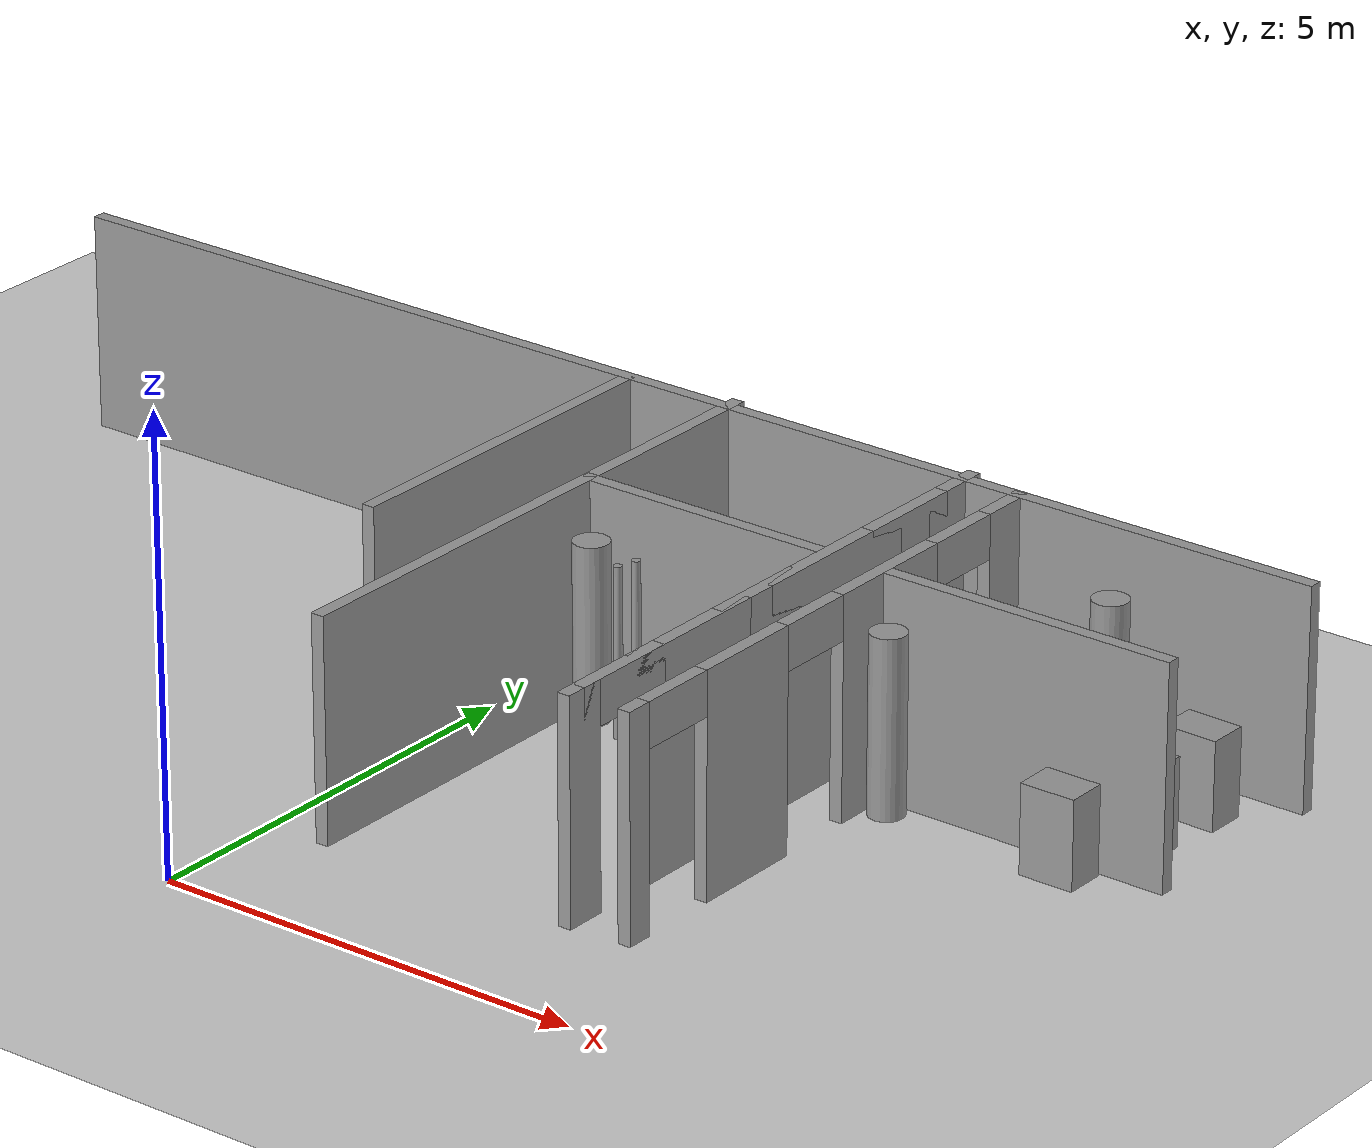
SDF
<sdf version="1.7">
 <world name="default">
  <model name="ground_plane">
   <static>1</static>
   <link name="link">
    <collision name="collision">
     <geometry><plane><normal>0 0 1</normal><size>100 100</size></plane></geometry>
     <surface>
      <contact><collide_bitmask>65535</collide_bitmask></contact>
      <friction><ode><mu>100</mu><mu2>50</mu2></ode></friction>
     </surface>
    </collision>
    <visual name="visual">
     <cast_shadows>0</cast_shadows>
     <geometry><plane><normal>0 0 1</normal><size>100 100</size></plane></geometry>
     <material>
      <script><uri>file://media/materials/scripts/gazebo.material</uri><name>Gazebo/Grey</name></script>
     </material>
    </visual>
   </link>
  </model>
  <model name="Untitled">
   <link name="Wall_0">
    <pose>-0.072532 7.88956 0 0 -0 0</pose>
    <visual name="Wall_0_Visual">
     <pose>0 0 1.25 0 -0 0</pose>
     <geometry><box><size>16 0.15 2.5</size></box></geometry>
     <material>
      <script><uri>file://media/materials/scripts/gazebo.material</uri><name>Gazebo/Grey</name></script>
      <ambient>1 1 1 1</ambient>
      <shader type="pixel"/>
     </material>
     <meta><layer>0</layer></meta>
    </visual>
    <collision name="Wall_0_Collision">
     <pose>0 0 1.25 0 -0 0</pose>
     <geometry><box><size>16 0.15 2.5</size></box></geometry>
     <surface>
      <friction>
       <ode><mu>1</mu><mu2>1</mu2><fdir1>0 0 0</fdir1><slip1>0</slip1><slip2>0</slip2></ode>
       <torsional>
        <coefficient>1</coefficient>
        <patch_radius>0</patch_radius>
        <surface_radius>0</surface_radius>
        <use_patch_radius>1</use_patch_radius>
        <ode><slip>0</slip></ode>
       </torsional>
      </friction>
      <bounce><restitution_coefficient>0</restitution_coefficient><threshold>1e+06</threshold></bounce>
      <contact>
       <collide_without_contact>0</collide_without_contact>
       <collide_without_contact_bitmask>1</collide_without_contact_bitmask>
       <collide_bitmask>1</collide_bitmask>
       <ode>
        <soft_cfm>0</soft_cfm>
        <soft_erp>0.2</soft_erp>
        <kp>1e+13</kp>
        <kd>1</kd>
        <max_vel>0.01</max_vel>
        <min_depth>0</min_depth>
       </ode>
       <bullet>
        <split_impulse>1</split_impulse>
        <split_impulse_penetration_threshold>-0.01</split_impulse_penetration_threshold>
        <soft_cfm>0</soft_cfm>
        <soft_erp>0.2</soft_erp>
        <kp>1e+13</kp>
        <kd>1</kd>
       </bullet>
      </contact>
     </surface>
    </collision>
   </link>
   <link name="Wall_46">
    <pose>0.647533 4.69911 0 0 -0 1.5708</pose>
    <visual name="Wall_46_Visual">
     <pose>0 0 1.25 0 -0 0</pose>
     <geometry><box><size>6.75 0.15 2.5</size></box></geometry>
     <material>
      <script><uri>file://media/materials/scripts/gazebo.material</uri><name>Gazebo/Grey</name></script>
      <ambient>1 1 1 1</ambient>
      <shader type="pixel"/>
     </material>
     <meta><layer>0</layer></meta>
    </visual>
    <collision name="Wall_46_Collision">
     <pose>0 0 1.25 0 -0 0</pose>
     <geometry><box><size>6.75 0.15 2.5</size></box></geometry>
     <surface>
      <friction>
       <ode><mu>1</mu><mu2>1</mu2><fdir1>0 0 0</fdir1><slip1>0</slip1><slip2>0</slip2></ode>
       <torsional>
        <coefficient>1</coefficient>
        <patch_radius>0</patch_radius>
        <surface_radius>0</surface_radius>
        <use_patch_radius>1</use_patch_radius>
        <ode><slip>0</slip></ode>
       </torsional>
      </friction>
      <bounce><restitution_coefficient>0</restitution_coefficient><threshold>1e+06</threshold></bounce>
      <contact>
       <collide_without_contact>0</collide_without_contact>
       <collide_without_contact_bitmask>1</collide_without_contact_bitmask>
       <collide_bitmask>1</collide_bitmask>
       <ode>
        <soft_cfm>0</soft_cfm>
        <soft_erp>0.2</soft_erp>
        <kp>1e+13</kp>
        <kd>1</kd>
        <max_vel>0.01</max_vel>
        <min_depth>0</min_depth>
       </ode>
       <bullet>
        <split_impulse>1</split_impulse>
        <split_impulse_penetration_threshold>-0.01</split_impulse_penetration_threshold>
        <soft_cfm>0</soft_cfm>
        <soft_erp>0.2</soft_erp>
        <kp>1e+13</kp>
        <kd>1</kd>
       </bullet>
      </contact>
     </surface>
    </collision>
   </link>
   <link name="Wall_48">
    <pose>3.66595 4.69807 0 0 -0 1.5708</pose>
    <inertial>
     <inertia><ixx>0</ixx><ixy>0</ixy><ixz>0</ixz><iyy>0</iyy><iyz>0</iyz><izz>0</izz></inertia>
     <mass>0</mass>
    </inertial>
    <visual name="Wall_48_Visual_0">
     <pose>-3.08008 0 1.25 0 -0 0</pose>
     <geometry><box><size>0.470831 0.15 2.5</size></box></geometry>
     <material>
      <script><uri>file://media/materials/scripts/gazebo.material</uri><name>Gazebo/Grey</name></script>
      <ambient>1 1 1 1</ambient>
      <shader type="pixel"/>
     </material>
     <meta><layer>0</layer></meta>
    </visual>
    <visual name="Wall_48_Visual_1">
     <pose>-1.36397 0 1.25 0 -0 0</pose>
     <geometry><box><size>1.79656 0.15 2.5</size></box></geometry>
     <material>
      <script><uri>file://media/materials/scripts/gazebo.material</uri><name>Gazebo/Grey</name></script>
      <ambient>1 1 1 1</ambient>
      <shader type="pixel"/>
     </material>
     <meta><layer>0</layer></meta>
    </visual>
    <visual name="Wall_48_Visual_2">
     <pose>0.955913 0 1.25 0 -0 0</pose>
     <geometry><box><size>2.15103 0.15 2.5</size></box></geometry>
     <material>
      <script><uri>file://media/materials/scripts/gazebo.material</uri><name>Gazebo/Grey</name></script>
      <ambient>1 1 1 1</ambient>
      <shader type="pixel"/>
     </material>
     <meta><layer>0</layer></meta>
    </visual>
    <visual name="Wall_48_Visual_3">
     <pose>2.9398 0 1.25 0 -0 0</pose>
     <geometry><box><size>0.861791 0.15 2.5</size></box></geometry>
     <material>
      <script><uri>file://media/materials/scripts/gazebo.material</uri><name>Gazebo/Grey</name></script>
      <ambient>1 1 1 1</ambient>
      <shader type="pixel"/>
     </material>
     <meta><layer>0</layer></meta>
    </visual>
    <visual name="Wall_48_Visual_4">
     <pose>-2.46015 0 2.25 0 -0 0</pose>
     <geometry><box><size>1.25019 0.15 0.5</size></box></geometry>
     <material>
      <script><uri>file://media/materials/scripts/gazebo.material</uri><name>Gazebo/Grey</name></script>
      <ambient>1 1 1 1</ambient>
      <shader type="pixel"/>
     </material>
     <meta><layer>0</layer></meta>
    </visual>
    <visual name="Wall_48_Visual_5">
     <pose>-0.267776 0 2.25 0 -0 0</pose>
     <geometry><box><size>1.25019 0.15 0.5</size></box></geometry>
     <material>
      <script><uri>file://media/materials/scripts/gazebo.material</uri><name>Gazebo/Grey</name></script>
      <ambient>1 1 1 1</ambient>
      <shader type="pixel"/>
     </material>
     <meta><layer>0</layer></meta>
    </visual>
    <visual name="Wall_48_Visual_6">
     <pose>2.1796 0 2.25 0 -0 0</pose>
     <geometry><box><size>1.25019 0.15 0.5</size></box></geometry>
     <material>
      <script><uri>file://media/materials/scripts/gazebo.material</uri><name>Gazebo/Grey</name></script>
      <ambient>1 1 1 1</ambient>
      <shader type="pixel"/>
     </material>
     <meta><layer>0</layer></meta>
    </visual>
    <collision name="Wall_48_Collision_0">
     <pose>-3.08008 0 1.25 0 -0 0</pose>
     <geometry><box><size>0.470831 0.15 2.5</size></box></geometry>
     <surface>
      <friction>
       <ode><mu>1</mu><mu2>1</mu2><fdir1>0 0 0</fdir1><slip1>0</slip1><slip2>0</slip2></ode>
       <torsional>
        <coefficient>1</coefficient>
        <patch_radius>0</patch_radius>
        <surface_radius>0</surface_radius>
        <use_patch_radius>1</use_patch_radius>
        <ode><slip>0</slip></ode>
       </torsional>
      </friction>
      <bounce><restitution_coefficient>0</restitution_coefficient><threshold>1e+06</threshold></bounce>
      <contact>
       <collide_without_contact>0</collide_without_contact>
       <collide_without_contact_bitmask>1</collide_without_contact_bitmask>
       <collide_bitmask>1</collide_bitmask>
       <ode>
        <soft_cfm>0</soft_cfm>
        <soft_erp>0.2</soft_erp>
        <kp>1e+13</kp>
        <kd>1</kd>
        <max_vel>0.01</max_vel>
        <min_depth>0</min_depth>
       </ode>
       <bullet>
        <split_impulse>1</split_impulse>
        <split_impulse_penetration_threshold>-0.01</split_impulse_penetration_threshold>
        <soft_cfm>0</soft_cfm>
        <soft_erp>0.2</soft_erp>
        <kp>1e+13</kp>
        <kd>1</kd>
       </bullet>
      </contact>
     </surface>
    </collision>
    <collision name="Wall_48_Collision_1">
     <pose>-1.36397 0 1.25 0 -0 0</pose>
     <geometry><box><size>1.79656 0.15 2.5</size></box></geometry>
     <surface>
      <friction>
       <ode><mu>1</mu><mu2>1</mu2><fdir1>0 0 0</fdir1><slip1>0</slip1><slip2>0</slip2></ode>
       <torsional>
        <coefficient>1</coefficient>
        <patch_radius>0</patch_radius>
        <surface_radius>0</surface_radius>
        <use_patch_radius>1</use_patch_radius>
        <ode><slip>0</slip></ode>
       </torsional>
      </friction>
      <bounce><restitution_coefficient>0</restitution_coefficient><threshold>1e+06</threshold></bounce>
      <contact>
       <collide_without_contact>0</collide_without_contact>
       <collide_without_contact_bitmask>1</collide_without_contact_bitmask>
       <collide_bitmask>1</collide_bitmask>
       <ode>
        <soft_cfm>0</soft_cfm>
        <soft_erp>0.2</soft_erp>
        <kp>1e+13</kp>
        <kd>1</kd>
        <max_vel>0.01</max_vel>
        <min_depth>0</min_depth>
       </ode>
       <bullet>
        <split_impulse>1</split_impulse>
        <split_impulse_penetration_threshold>-0.01</split_impulse_penetration_threshold>
        <soft_cfm>0</soft_cfm>
        <soft_erp>0.2</soft_erp>
        <kp>1e+13</kp>
        <kd>1</kd>
       </bullet>
      </contact>
     </surface>
    </collision>
    <collision name="Wall_48_Collision_2">
     <pose>0.955913 0 1.25 0 -0 0</pose>
     <geometry><box><size>2.15103 0.15 2.5</size></box></geometry>
     <surface>
      <friction>
       <ode><mu>1</mu><mu2>1</mu2><fdir1>0 0 0</fdir1><slip1>0</slip1><slip2>0</slip2></ode>
       <torsional>
        <coefficient>1</coefficient>
        <patch_radius>0</patch_radius>
        <surface_radius>0</surface_radius>
        <use_patch_radius>1</use_patch_radius>
        <ode><slip>0</slip></ode>
       </torsional>
      </friction>
      <bounce><restitution_coefficient>0</restitution_coefficient><threshold>1e+06</threshold></bounce>
      <contact>
       <collide_without_contact>0</collide_without_contact>
       <collide_without_contact_bitmask>1</collide_without_contact_bitmask>
       <collide_bitmask>1</collide_bitmask>
       <ode>
        <soft_cfm>0</soft_cfm>
        <soft_erp>0.2</soft_erp>
        <kp>1e+13</kp>
        <kd>1</kd>
        <max_vel>0.01</max_vel>
        <min_depth>0</min_depth>
       </ode>
       <bullet>
        <split_impulse>1</split_impulse>
        <split_impulse_penetration_threshold>-0.01</split_impulse_penetration_threshold>
        <soft_cfm>0</soft_cfm>
        <soft_erp>0.2</soft_erp>
        <kp>1e+13</kp>
        <kd>1</kd>
       </bullet>
      </contact>
     </surface>
    </collision>
    <collision name="Wall_48_Collision_3">
     <pose>2.9398 0 1.25 0 -0 0</pose>
     <geometry><box><size>0.861791 0.15 2.5</size></box></geometry>
     <surface>
      <friction>
       <ode><mu>1</mu><mu2>1</mu2><fdir1>0 0 0</fdir1><slip1>0</slip1><slip2>0</slip2></ode>
       <torsional>
        <coefficient>1</coefficient>
        <patch_radius>0</patch_radius>
        <surface_radius>0</surface_radius>
        <use_patch_radius>1</use_patch_radius>
        <ode><slip>0</slip></ode>
       </torsional>
      </friction>
      <bounce><restitution_coefficient>0</restitution_coefficient><threshold>1e+06</threshold></bounce>
      <contact>
       <collide_without_contact>0</collide_without_contact>
       <collide_without_contact_bitmask>1</collide_without_contact_bitmask>
       <collide_bitmask>1</collide_bitmask>
       <ode>
        <soft_cfm>0</soft_cfm>
        <soft_erp>0.2</soft_erp>
        <kp>1e+13</kp>
        <kd>1</kd>
        <max_vel>0.01</max_vel>
        <min_depth>0</min_depth>
       </ode>
       <bullet>
        <split_impulse>1</split_impulse>
        <split_impulse_penetration_threshold>-0.01</split_impulse_penetration_threshold>
        <soft_cfm>0</soft_cfm>
        <soft_erp>0.2</soft_erp>
        <kp>1e+13</kp>
        <kd>1</kd>
       </bullet>
      </contact>
     </surface>
    </collision>
    <collision name="Wall_48_Collision_4">
     <pose>-2.46015 0 2.25 0 -0 0</pose>
     <geometry><box><size>1.25019 0.15 0.5</size></box></geometry>
     <surface>
      <friction>
       <ode><mu>1</mu><mu2>1</mu2><fdir1>0 0 0</fdir1><slip1>0</slip1><slip2>0</slip2></ode>
       <torsional>
        <coefficient>1</coefficient>
        <patch_radius>0</patch_radius>
        <surface_radius>0</surface_radius>
        <use_patch_radius>1</use_patch_radius>
        <ode><slip>0</slip></ode>
       </torsional>
      </friction>
      <bounce><restitution_coefficient>0</restitution_coefficient><threshold>1e+06</threshold></bounce>
      <contact>
       <collide_without_contact>0</collide_without_contact>
       <collide_without_contact_bitmask>1</collide_without_contact_bitmask>
       <collide_bitmask>1</collide_bitmask>
       <ode>
        <soft_cfm>0</soft_cfm>
        <soft_erp>0.2</soft_erp>
        <kp>1e+13</kp>
        <kd>1</kd>
        <max_vel>0.01</max_vel>
        <min_depth>0</min_depth>
       </ode>
       <bullet>
        <split_impulse>1</split_impulse>
        <split_impulse_penetration_threshold>-0.01</split_impulse_penetration_threshold>
        <soft_cfm>0</soft_cfm>
        <soft_erp>0.2</soft_erp>
        <kp>1e+13</kp>
        <kd>1</kd>
       </bullet>
      </contact>
     </surface>
    </collision>
    <collision name="Wall_48_Collision_5">
     <pose>-0.267776 0 2.25 0 -0 0</pose>
     <geometry><box><size>1.25019 0.15 0.5</size></box></geometry>
     <surface>
      <friction>
       <ode><mu>1</mu><mu2>1</mu2><fdir1>0 0 0</fdir1><slip1>0</slip1><slip2>0</slip2></ode>
       <torsional>
        <coefficient>1</coefficient>
        <patch_radius>0</patch_radius>
        <surface_radius>0</surface_radius>
        <use_patch_radius>1</use_patch_radius>
        <ode><slip>0</slip></ode>
       </torsional>
      </friction>
      <bounce><restitution_coefficient>0</restitution_coefficient><threshold>1e+06</threshold></bounce>
      <contact>
       <collide_without_contact>0</collide_without_contact>
       <collide_without_contact_bitmask>1</collide_without_contact_bitmask>
       <collide_bitmask>1</collide_bitmask>
       <ode>
        <soft_cfm>0</soft_cfm>
        <soft_erp>0.2</soft_erp>
        <kp>1e+13</kp>
        <kd>1</kd>
        <max_vel>0.01</max_vel>
        <min_depth>0</min_depth>
       </ode>
       <bullet>
        <split_impulse>1</split_impulse>
        <split_impulse_penetration_threshold>-0.01</split_impulse_penetration_threshold>
        <soft_cfm>0</soft_cfm>
        <soft_erp>0.2</soft_erp>
        <kp>1e+13</kp>
        <kd>1</kd>
       </bullet>
      </contact>
     </surface>
    </collision>
    <collision name="Wall_48_Collision_6">
     <pose>2.1796 0 2.25 0 -0 0</pose>
     <geometry><box><size>1.25019 0.15 0.5</size></box></geometry>
     <surface>
      <friction>
       <ode><mu>1</mu><mu2>1</mu2><fdir1>0 0 0</fdir1><slip1>0</slip1><slip2>0</slip2></ode>
       <torsional>
        <coefficient>1</coefficient>
        <patch_radius>0</patch_radius>
        <surface_radius>0</surface_radius>
        <use_patch_radius>1</use_patch_radius>
        <ode><slip>0</slip></ode>
       </torsional>
      </friction>
      <bounce><restitution_coefficient>0</restitution_coefficient><threshold>1e+06</threshold></bounce>
      <contact>
       <collide_without_contact>0</collide_without_contact>
       <collide_without_contact_bitmask>1</collide_without_contact_bitmask>
       <collide_bitmask>1</collide_bitmask>
       <ode>
        <soft_cfm>0</soft_cfm>
        <soft_erp>0.2</soft_erp>
        <kp>1e+13</kp>
        <kd>1</kd>
        <max_vel>0.01</max_vel>
        <min_depth>0</min_depth>
       </ode>
       <bullet>
        <split_impulse>1</split_impulse>
        <split_impulse_penetration_threshold>-0.01</split_impulse_penetration_threshold>
        <soft_cfm>0</soft_cfm>
        <soft_erp>0.2</soft_erp>
        <kp>1e+13</kp>
        <kd>1</kd>
       </bullet>
      </contact>
     </surface>
    </collision>
   </link>
   <link name="Wall_50">
    <pose>4.34496 4.6963 0 0 -0 1.5708</pose>
    <visual name="Wall_50_Visual_0">
     <pose>-3.09931 0 1.25 0 -0 0</pose>
     <geometry><box><size>0.30139 0.15 2.5</size></box></geometry>
     <material>
      <script><uri>file://media/materials/scripts/gazebo.material</uri><name>Gazebo/Grey</name></script>
      <ambient>1 1 1 1</ambient>
      <shader type="pixel"/>
     </material>
     <meta><layer>0</layer></meta>
    </visual>
    <visual name="Wall_50_Visual_1">
     <pose>-1.40242 0 1.25 0 -0 0</pose>
     <geometry><box><size>1.29238 0.15 2.5</size></box></geometry>
     <material>
      <script><uri>file://media/materials/scripts/gazebo.material</uri><name>Gazebo/Grey</name></script>
      <ambient>1 1 1 1</ambient>
      <shader type="pixel"/>
     </material>
     <meta><layer>0</layer></meta>
    </visual>
    <visual name="Wall_50_Visual_2">
     <pose>0.925195 0 1.25 0 -0 0</pose>
     <geometry><box><size>1.56285 0.15 2.5</size></box></geometry>
     <material>
      <script><uri>file://media/materials/scripts/gazebo.material</uri><name>Gazebo/Grey</name></script>
      <ambient>1 1 1 1</ambient>
      <shader type="pixel"/>
     </material>
     <meta><layer>0</layer></meta>
    </visual>
    <visual name="Wall_50_Visual_3">
     <pose>2.92831 0 1.25 0 -0 0</pose>
     <geometry><box><size>0.643379 0.15 2.5</size></box></geometry>
     <material>
      <script><uri>file://media/materials/scripts/gazebo.material</uri><name>Gazebo/Grey</name></script>
      <ambient>1 1 1 1</ambient>
      <shader type="pixel"/>
     </material>
     <meta><layer>0</layer></meta>
    </visual>
    <visual name="Wall_50_Visual_4">
     <pose>-2.49861 0 2.25 0 -0 0</pose>
     <geometry><box><size>0.9 0.15 0.5</size></box></geometry>
     <material>
      <script><uri>file://media/materials/scripts/gazebo.material</uri><name>Gazebo/Grey</name></script>
      <ambient>1 1 1 1</ambient>
      <shader type="pixel"/>
     </material>
     <meta><layer>0</layer></meta>
    </visual>
    <visual name="Wall_50_Visual_5">
     <pose>-0.306231 0 2.25 0 -0 0</pose>
     <geometry><box><size>0.9 0.15 0.5</size></box></geometry>
     <material>
      <script><uri>file://media/materials/scripts/gazebo.material</uri><name>Gazebo/Grey</name></script>
      <ambient>1 1 1 1</ambient>
      <shader type="pixel"/>
     </material>
     <meta><layer>0</layer></meta>
    </visual>
    <visual name="Wall_50_Visual_6">
     <pose>2.15662 0 2.25 0 -0 0</pose>
     <geometry><box><size>0.9 0.15 0.5</size></box></geometry>
     <material>
      <script><uri>file://media/materials/scripts/gazebo.material</uri><name>Gazebo/Grey</name></script>
      <ambient>1 1 1 1</ambient>
      <shader type="pixel"/>
     </material>
     <meta><layer>0</layer></meta>
    </visual>
    <collision name="Wall_50_Collision_0">
     <pose>-3.09931 0 1.25 0 -0 0</pose>
     <geometry><box><size>0.30139 0.15 2.5</size></box></geometry>
     <surface>
      <friction>
       <ode><mu>1</mu><mu2>1</mu2><fdir1>0 0 0</fdir1><slip1>0</slip1><slip2>0</slip2></ode>
       <torsional>
        <coefficient>1</coefficient>
        <patch_radius>0</patch_radius>
        <surface_radius>0</surface_radius>
        <use_patch_radius>1</use_patch_radius>
        <ode><slip>0</slip></ode>
       </torsional>
      </friction>
      <bounce><restitution_coefficient>0</restitution_coefficient><threshold>1e+06</threshold></bounce>
      <contact>
       <collide_without_contact>0</collide_without_contact>
       <collide_without_contact_bitmask>1</collide_without_contact_bitmask>
       <collide_bitmask>1</collide_bitmask>
       <ode>
        <soft_cfm>0</soft_cfm>
        <soft_erp>0.2</soft_erp>
        <kp>1e+13</kp>
        <kd>1</kd>
        <max_vel>0.01</max_vel>
        <min_depth>0</min_depth>
       </ode>
       <bullet>
        <split_impulse>1</split_impulse>
        <split_impulse_penetration_threshold>-0.01</split_impulse_penetration_threshold>
        <soft_cfm>0</soft_cfm>
        <soft_erp>0.2</soft_erp>
        <kp>1e+13</kp>
        <kd>1</kd>
       </bullet>
      </contact>
     </surface>
    </collision>
    <collision name="Wall_50_Collision_1">
     <pose>-1.40242 0 1.25 0 -0 0</pose>
     <geometry><box><size>1.29238 0.15 2.5</size></box></geometry>
     <surface>
      <friction>
       <ode><mu>1</mu><mu2>1</mu2><fdir1>0 0 0</fdir1><slip1>0</slip1><slip2>0</slip2></ode>
       <torsional>
        <coefficient>1</coefficient>
        <patch_radius>0</patch_radius>
        <surface_radius>0</surface_radius>
        <use_patch_radius>1</use_patch_radius>
        <ode><slip>0</slip></ode>
       </torsional>
      </friction>
      <bounce><restitution_coefficient>0</restitution_coefficient><threshold>1e+06</threshold></bounce>
      <contact>
       <collide_without_contact>0</collide_without_contact>
       <collide_without_contact_bitmask>1</collide_without_contact_bitmask>
       <collide_bitmask>1</collide_bitmask>
       <ode>
        <soft_cfm>0</soft_cfm>
        <soft_erp>0.2</soft_erp>
        <kp>1e+13</kp>
        <kd>1</kd>
        <max_vel>0.01</max_vel>
        <min_depth>0</min_depth>
       </ode>
       <bullet>
        <split_impulse>1</split_impulse>
        <split_impulse_penetration_threshold>-0.01</split_impulse_penetration_threshold>
        <soft_cfm>0</soft_cfm>
        <soft_erp>0.2</soft_erp>
        <kp>1e+13</kp>
        <kd>1</kd>
       </bullet>
      </contact>
     </surface>
    </collision>
    <collision name="Wall_50_Collision_2">
     <pose>0.925195 0 1.25 0 -0 0</pose>
     <geometry><box><size>1.56285 0.15 2.5</size></box></geometry>
     <surface>
      <friction>
       <ode><mu>1</mu><mu2>1</mu2><fdir1>0 0 0</fdir1><slip1>0</slip1><slip2>0</slip2></ode>
       <torsional>
        <coefficient>1</coefficient>
        <patch_radius>0</patch_radius>
        <surface_radius>0</surface_radius>
        <use_patch_radius>1</use_patch_radius>
        <ode><slip>0</slip></ode>
       </torsional>
      </friction>
      <bounce><restitution_coefficient>0</restitution_coefficient><threshold>1e+06</threshold></bounce>
      <contact>
       <collide_without_contact>0</collide_without_contact>
       <collide_without_contact_bitmask>1</collide_without_contact_bitmask>
       <collide_bitmask>1</collide_bitmask>
       <ode>
        <soft_cfm>0</soft_cfm>
        <soft_erp>0.2</soft_erp>
        <kp>1e+13</kp>
        <kd>1</kd>
        <max_vel>0.01</max_vel>
        <min_depth>0</min_depth>
       </ode>
       <bullet>
        <split_impulse>1</split_impulse>
        <split_impulse_penetration_threshold>-0.01</split_impulse_penetration_threshold>
        <soft_cfm>0</soft_cfm>
        <soft_erp>0.2</soft_erp>
        <kp>1e+13</kp>
        <kd>1</kd>
       </bullet>
      </contact>
     </surface>
    </collision>
    <collision name="Wall_50_Collision_4">
     <pose>-2.49861 0 2.25 0 -0 0</pose>
     <geometry><box><size>0.9 0.15 0.5</size></box></geometry>
     <surface>
      <friction>
       <ode><mu>1</mu><mu2>1</mu2><fdir1>0 0 0</fdir1><slip1>0</slip1><slip2>0</slip2></ode>
       <torsional>
        <coefficient>1</coefficient>
        <patch_radius>0</patch_radius>
        <surface_radius>0</surface_radius>
        <use_patch_radius>1</use_patch_radius>
        <ode><slip>0</slip></ode>
       </torsional>
      </friction>
      <bounce><restitution_coefficient>0</restitution_coefficient><threshold>1e+06</threshold></bounce>
      <contact>
       <collide_without_contact>0</collide_without_contact>
       <collide_without_contact_bitmask>1</collide_without_contact_bitmask>
       <collide_bitmask>1</collide_bitmask>
       <ode>
        <soft_cfm>0</soft_cfm>
        <soft_erp>0.2</soft_erp>
        <kp>1e+13</kp>
        <kd>1</kd>
        <max_vel>0.01</max_vel>
        <min_depth>0</min_depth>
       </ode>
       <bullet>
        <split_impulse>1</split_impulse>
        <split_impulse_penetration_threshold>-0.01</split_impulse_penetration_threshold>
        <soft_cfm>0</soft_cfm>
        <soft_erp>0.2</soft_erp>
        <kp>1e+13</kp>
        <kd>1</kd>
       </bullet>
      </contact>
     </surface>
    </collision>
    <collision name="Wall_50_Collision_3">
     <pose>2.92831 0 1.25 0 -0 0</pose>
     <geometry><box><size>0.643379 0.15 2.5</size></box></geometry>
     <surface>
      <friction>
       <ode><mu>1</mu><mu2>1</mu2><fdir1>0 0 0</fdir1><slip1>0</slip1><slip2>0</slip2></ode>
       <torsional>
        <coefficient>1</coefficient>
        <patch_radius>0</patch_radius>
        <surface_radius>0</surface_radius>
        <use_patch_radius>1</use_patch_radius>
        <ode><slip>0</slip></ode>
       </torsional>
      </friction>
      <bounce><restitution_coefficient>0</restitution_coefficient><threshold>1e+06</threshold></bounce>
      <contact>
       <collide_without_contact>0</collide_without_contact>
       <collide_without_contact_bitmask>1</collide_without_contact_bitmask>
       <collide_bitmask>1</collide_bitmask>
       <ode>
        <soft_cfm>0</soft_cfm>
        <soft_erp>0.2</soft_erp>
        <kp>1e+13</kp>
        <kd>1</kd>
        <max_vel>0.01</max_vel>
        <min_depth>0</min_depth>
       </ode>
       <bullet>
        <split_impulse>1</split_impulse>
        <split_impulse_penetration_threshold>-0.01</split_impulse_penetration_threshold>
        <soft_cfm>0</soft_cfm>
        <soft_erp>0.2</soft_erp>
        <kp>1e+13</kp>
        <kd>1</kd>
       </bullet>
      </contact>
     </surface>
    </collision>
    <collision name="Wall_50_Collision_6">
     <pose>2.15662 0 2.25 0 -0 0</pose>
     <geometry><box><size>0.9 0.15 0.5</size></box></geometry>
     <surface>
      <friction>
       <ode><mu>1</mu><mu2>1</mu2><fdir1>0 0 0</fdir1><slip1>0</slip1><slip2>0</slip2></ode>
       <torsional>
        <coefficient>1</coefficient>
        <patch_radius>0</patch_radius>
        <surface_radius>0</surface_radius>
        <use_patch_radius>1</use_patch_radius>
        <ode><slip>0</slip></ode>
       </torsional>
      </friction>
      <bounce><restitution_coefficient>0</restitution_coefficient><threshold>1e+06</threshold></bounce>
      <contact>
       <collide_without_contact>0</collide_without_contact>
       <collide_without_contact_bitmask>1</collide_without_contact_bitmask>
       <collide_bitmask>1</collide_bitmask>
       <ode>
        <soft_cfm>0</soft_cfm>
        <soft_erp>0.2</soft_erp>
        <kp>1e+13</kp>
        <kd>1</kd>
        <max_vel>0.01</max_vel>
        <min_depth>0</min_depth>
       </ode>
       <bullet>
        <split_impulse>1</split_impulse>
        <split_impulse_penetration_threshold>-0.01</split_impulse_penetration_threshold>
        <soft_cfm>0</soft_cfm>
        <soft_erp>0.2</soft_erp>
        <kp>1e+13</kp>
        <kd>1</kd>
       </bullet>
      </contact>
     </surface>
    </collision>
    <collision name="Wall_50_Collision_5">
     <pose>-0.306231 0 2.25 0 -0 0</pose>
     <geometry><box><size>0.9 0.15 0.5</size></box></geometry>
     <surface>
      <friction>
       <ode><mu>1</mu><mu2>1</mu2><fdir1>0 0 0</fdir1><slip1>0</slip1><slip2>0</slip2></ode>
       <torsional>
        <coefficient>1</coefficient>
        <patch_radius>0</patch_radius>
        <surface_radius>0</surface_radius>
        <use_patch_radius>1</use_patch_radius>
        <ode><slip>0</slip></ode>
       </torsional>
      </friction>
      <bounce><restitution_coefficient>0</restitution_coefficient><threshold>1e+06</threshold></bounce>
      <contact>
       <collide_without_contact>0</collide_without_contact>
       <collide_without_contact_bitmask>1</collide_without_contact_bitmask>
       <collide_bitmask>1</collide_bitmask>
       <ode>
        <soft_cfm>0</soft_cfm>
        <soft_erp>0.2</soft_erp>
        <kp>1e+13</kp>
        <kd>1</kd>
        <max_vel>0.01</max_vel>
        <min_depth>0</min_depth>
       </ode>
       <bullet>
        <split_impulse>1</split_impulse>
        <split_impulse_penetration_threshold>-0.01</split_impulse_penetration_threshold>
        <soft_cfm>0</soft_cfm>
        <soft_erp>0.2</soft_erp>
        <kp>1e+13</kp>
        <kd>1</kd>
       </bullet>
      </contact>
     </surface>
    </collision>
   </link>
   <link name="Wall_52">
    <pose>2.09535 5.57534 0 0 -0 3.14159</pose>
    <visual name="Wall_52_Visual">
     <pose>0 0 1.25 0 -0 0</pose>
     <geometry><box><size>3 0.15 2.5</size></box></geometry>
     <material>
      <script><uri>file://media/materials/scripts/gazebo.material</uri><name>Gazebo/Grey</name></script>
      <ambient>1 1 1 1</ambient>
      <shader type="pixel"/>
     </material>
     <meta><layer>0</layer></meta>
    </visual>
    <collision name="Wall_52_Collision">
     <pose>0 0 1.25 0 -0 0</pose>
     <geometry><box><size>3 0.15 2.5</size></box></geometry>
     <surface>
      <friction>
       <ode><mu>1</mu><mu2>1</mu2><fdir1>0 0 0</fdir1><slip1>0</slip1><slip2>0</slip2></ode>
       <torsional>
        <coefficient>1</coefficient>
        <patch_radius>0</patch_radius>
        <surface_radius>0</surface_radius>
        <use_patch_radius>1</use_patch_radius>
        <ode><slip>0</slip></ode>
       </torsional>
      </friction>
      <bounce><restitution_coefficient>0</restitution_coefficient><threshold>1e+06</threshold></bounce>
      <contact>
       <collide_without_contact>0</collide_without_contact>
       <collide_without_contact_bitmask>1</collide_without_contact_bitmask>
       <collide_bitmask>1</collide_bitmask>
       <ode>
        <soft_cfm>0</soft_cfm>
        <soft_erp>0.2</soft_erp>
        <kp>1e+13</kp>
        <kd>1</kd>
        <max_vel>0.01</max_vel>
        <min_depth>0</min_depth>
       </ode>
       <bullet>
        <split_impulse>1</split_impulse>
        <split_impulse_penetration_threshold>-0.01</split_impulse_penetration_threshold>
        <soft_cfm>0</soft_cfm>
        <soft_erp>0.2</soft_erp>
        <kp>1e+13</kp>
        <kd>1</kd>
       </bullet>
      </contact>
     </surface>
    </collision>
   </link>
   <link name="Wall_59">
    <pose>6.07316 5.57534 0 0 -0 0</pose>
    <visual name="Wall_59_Visual">
     <pose>0 0 1.25 0 -0 0</pose>
     <geometry><box><size>3.5 0.15 2.5</size></box></geometry>
     <material>
      <script><uri>file://media/materials/scripts/gazebo.material</uri><name>Gazebo/Grey</name></script>
      <ambient>1 1 1 1</ambient>
      <shader type="pixel"/>
     </material>
     <meta><layer>0</layer></meta>
    </visual>
    <collision name="Wall_59_Collision">
     <pose>0 0 1.25 0 -0 0</pose>
     <geometry><box><size>3.5 0.15 2.5</size></box></geometry>
     <surface>
      <friction>
       <ode><mu>1</mu><mu2>1</mu2><fdir1>0 0 0</fdir1><slip1>0</slip1><slip2>0</slip2></ode>
       <torsional>
        <coefficient>1</coefficient>
        <patch_radius>0</patch_radius>
        <surface_radius>0</surface_radius>
        <use_patch_radius>1</use_patch_radius>
        <ode><slip>0</slip></ode>
       </torsional>
      </friction>
      <bounce><restitution_coefficient>0</restitution_coefficient><threshold>1e+06</threshold></bounce>
      <contact>
       <collide_without_contact>0</collide_without_contact>
       <collide_without_contact_bitmask>1</collide_without_contact_bitmask>
       <collide_bitmask>1</collide_bitmask>
       <ode>
        <soft_cfm>0</soft_cfm>
        <soft_erp>0.2</soft_erp>
        <kp>1e+13</kp>
        <kd>1</kd>
        <max_vel>0.01</max_vel>
        <min_depth>0</min_depth>
       </ode>
       <bullet>
        <split_impulse>1</split_impulse>
        <split_impulse_penetration_threshold>-0.01</split_impulse_penetration_threshold>
        <soft_cfm>0</soft_cfm>
        <soft_erp>0.2</soft_erp>
        <kp>1e+13</kp>
        <kd>1</kd>
       </bullet>
      </contact>
     </surface>
    </collision>
   </link>
   <link name="Wall_6">
    <pose>-0.647532 5.76333 0 0 -0 1.5708</pose>
    <visual name="Wall_6_Visual">
     <pose>0 0 1.25 0 -0 0</pose>
     <geometry><box><size>4.25 0.15 2.5</size></box></geometry>
     <material>
      <script><uri>file://media/materials/scripts/gazebo.material</uri><name>Gazebo/Grey</name></script>
      <ambient>1 1 1 1</ambient>
      <shader type="pixel"/>
     </material>
     <meta><layer>0</layer></meta>
    </visual>
    <collision name="Wall_6_Collision">
     <pose>0 0 1.25 0 -0 0</pose>
     <geometry><box><size>4.25 0.15 2.5</size></box></geometry>
     <surface>
      <friction>
       <ode><mu>1</mu><mu2>1</mu2><fdir1>0 0 0</fdir1><slip1>0</slip1><slip2>0</slip2></ode>
       <torsional>
        <coefficient>1</coefficient>
        <patch_radius>0</patch_radius>
        <surface_radius>0</surface_radius>
        <use_patch_radius>1</use_patch_radius>
        <ode><slip>0</slip></ode>
       </torsional>
      </friction>
      <bounce><restitution_coefficient>0</restitution_coefficient><threshold>1e+06</threshold></bounce>
      <contact>
       <collide_without_contact>0</collide_without_contact>
       <collide_without_contact_bitmask>1</collide_without_contact_bitmask>
       <collide_bitmask>1</collide_bitmask>
       <ode>
        <soft_cfm>0</soft_cfm>
        <soft_erp>0.2</soft_erp>
        <kp>1e+13</kp>
        <kd>1</kd>
        <max_vel>0.01</max_vel>
        <min_depth>0</min_depth>
       </ode>
       <bullet>
        <split_impulse>1</split_impulse>
        <split_impulse_penetration_threshold>-0.01</split_impulse_penetration_threshold>
        <soft_cfm>0</soft_cfm>
        <soft_erp>0.2</soft_erp>
        <kp>1e+13</kp>
        <kd>1</kd>
       </bullet>
      </contact>
     </surface>
    </collision>
   </link>
   <static>1</static>
   <pose>0.030064 0.19251 0 0 -0 0</pose>
  </model>
  <model name="unit_cylinder_clone_13">
   <pose>3.57187 5.52998 0.95853 0 -0 0.006043</pose>
   <link name="link">
    <inertial>
     <mass>1</mass>
     <inertia><ixx>0.145833</ixx><ixy>0</ixy><ixz>0</ixz><iyy>0.145833</iyy><iyz>0</iyz><izz>0.125</izz></inertia>
    </inertial>
    <collision name="collision">
     <geometry><cylinder><radius>0.0491429</radius><length>1.91706</length></cylinder></geometry>
    </collision>
    <visual name="visual">
     <geometry><cylinder><radius>0.0491429</radius><length>1.91706</length></cylinder></geometry>
     <material>
      <script><name>Gazebo/Grey</name><uri>file://media/materials/scripts/gazebo.material</uri></script>
     </material>
    </visual>
   </link>
  </model>
  <model name="unit_cylinder_clone_14">
   <pose>3.4037 5.48036 0.958522 0 1e-06 -0.004637</pose>
   <link name="link">
    <inertial>
     <mass>1</mass>
     <inertia><ixx>0.145833</ixx><ixy>0</ixy><ixz>0</ixz><iyy>0.145833</iyy><iyz>0</iyz><izz>0.125</izz></inertia>
    </inertial>
    <collision name="collision">
     <geometry><cylinder><radius>0.0491429</radius><length>1.91706</length></cylinder></geometry>
    </collision>
    <visual name="visual">
     <geometry><cylinder><radius>0.0491429</radius><length>1.91706</length></cylinder></geometry>
     <material>
      <script><name>Gazebo/Grey</name><uri>file://media/materials/scripts/gazebo.material</uri></script>
     </material>
    </visual>
   </link>
  </model>
  <model name="unit_cylinder_clone_15">
   <pose>1.53313 5.45395 0.958529 0 2e-06 -0.003668</pose>
   <link name="link">
    <inertial>
     <mass>1</mass>
     <inertia><ixx>0.145833</ixx><ixy>0</ixy><ixz>0</ixz><iyy>0.145833</iyy><iyz>0</iyz><izz>0.125</izz></inertia>
    </inertial>
    <collision name="collision">
     <geometry><cylinder><radius>0.0491429</radius><length>1.91706</length></cylinder></geometry>
    </collision>
    <visual name="visual">
     <geometry><cylinder><radius>0.0491429</radius><length>1.91706</length></cylinder></geometry>
     <material>
      <script><name>Gazebo/Grey</name><uri>file://media/materials/scripts/gazebo.material</uri></script>
     </material>
    </visual>
   </link>
  </model>
  <model name="unit_cylinder_clone_16">
   <pose>1.4738 5.2328 0.958521 0 -1e-06 -0.002881</pose>
   <link name="link">
    <inertial>
     <mass>1</mass>
     <inertia><ixx>0.145833</ixx><ixy>0</ixy><ixz>0</ixz><iyy>0.145833</iyy><iyz>0</iyz><izz>0.125</izz></inertia>
    </inertial>
    <collision name="collision">
     <geometry><cylinder><radius>0.0491429</radius><length>1.91706</length></cylinder></geometry>
    </collision>
    <visual name="visual">
     <geometry><cylinder><radius>0.0491429</radius><length>1.91706</length></cylinder></geometry>
     <material>
      <script><name>Gazebo/Grey</name><uri>file://media/materials/scripts/gazebo.material</uri></script>
     </material>
    </visual>
   </link>
  </model>
  <model name="unit_box_2_clone_0">
   <pose>6.8052 5.42531 0.5 0 -0 0.001132</pose>
   <link name="link">
    <inertial>
     <mass>1</mass>
     <inertia>
      <ixx>0.166667</ixx>
      <ixy>0</ixy>
      <ixz>0</ixz>
      <iyy>0.166667</iyy>
      <iyz>0</iyz>
      <izz>0.166667</izz>
     </inertia>
    </inertial>
    <collision name="collision"><geometry><box><size>0.632241 0.450252 1</size></box></geometry></collision>
    <visual name="visual">
     <geometry><box><size>0.632241 0.450252 1</size></box></geometry>
     <material>
      <script><name>Gazebo/Grey</name><uri>file://media/materials/scripts/gazebo.material</uri></script>
     </material>
    </visual>
   </link>
  </model>
  <model name="unit_box_2_clone_1">
   <pose>5.42666 7.51156 0.499997 -3e-06 -7e-06 3.1e-05</pose>
   <link name="link">
    <inertial>
     <mass>1</mass>
     <inertia>
      <ixx>0.166667</ixx>
      <ixy>0</ixy>
      <ixz>0</ixz>
      <iyy>0.166667</iyy>
      <iyz>0</iyz>
      <izz>0.166667</izz>
     </inertia>
    </inertial>
    <collision name="collision"><geometry><box><size>0.632241 0.450252 1</size></box></geometry></collision>
    <visual name="visual">
     <geometry><box><size>0.632241 0.450252 1</size></box></geometry>
     <material>
      <script><name>Gazebo/Grey</name><uri>file://media/materials/scripts/gazebo.material</uri></script>
     </material>
    </visual>
   </link>
  </model>
  <model name="unit_box_2_clone_2">
   <pose>5.46464 6.4589 0.5 0 -0 0.001132</pose>
   <link name="link">
    <inertial>
     <mass>1</mass>
     <inertia>
      <ixx>0.166667</ixx>
      <ixy>0</ixy>
      <ixz>0</ixz>
      <iyy>0.166667</iyy>
      <iyz>0</iyz>
      <izz>0.166667</izz>
     </inertia>
    </inertial>
    <collision name="collision"><geometry><box><size>0.632241 0.450252 1</size></box></geometry></collision>
    <visual name="visual">
     <geometry><box><size>0.632241 0.450252 1</size></box></geometry>
     <material>
      <script><name>Gazebo/Grey</name><uri>file://media/materials/scripts/gazebo.material</uri></script>
     </material>
    </visual>
   </link>
  </model>
  <model name="unit_box_2_clone_3">
   <pose>7.06063 6.42014 0.5 0 -0 0.001132</pose>
   <link name="link">
    <inertial>
     <mass>1</mass>
     <inertia>
      <ixx>0.166667</ixx>
      <ixy>0</ixy>
      <ixz>0</ixz>
      <iyy>0.166667</iyy>
      <iyz>0</iyz>
      <izz>0.166667</izz>
     </inertia>
    </inertial>
    <collision name="collision"><geometry><box><size>0.632241 0.450252 1</size></box></geometry></collision>
    <visual name="visual">
     <geometry><box><size>0.632241 0.450252 1</size></box></geometry>
     <material>
      <script><name>Gazebo/Grey</name><uri>file://media/materials/scripts/gazebo.material</uri></script>
     </material>
    </visual>
   </link>
  </model>
  <model name="unit_box_2_clone_4">
   <pose>7.1561 7.3601 0.499997 -3e-06 -7e-06 -0.020429</pose>
   <link name="link">
    <inertial>
     <mass>1</mass>
     <inertia>
      <ixx>0.166667</ixx>
      <ixy>0</ixy>
      <ixz>0</ixz>
      <iyy>0.166667</iyy>
      <iyz>0</iyz>
      <izz>0.166667</izz>
     </inertia>
    </inertial>
    <collision name="collision"><geometry><box><size>0.632241 0.450252 1</size></box></geometry></collision>
    <visual name="visual">
     <geometry><box><size>0.632241 0.450252 1</size></box></geometry>
     <material>
      <script><name>Gazebo/Grey</name><uri>file://media/materials/scripts/gazebo.material</uri></script>
     </material>
    </visual>
   </link>
  </model>
  <model name="unit_box_2_clone_5">
   <pose>2.33716 6.98129 0.5 -0 -1e-06 0.046912</pose>
   <link name="link">
    <inertial>
     <mass>1</mass>
     <inertia>
      <ixx>0.166667</ixx>
      <ixy>0</ixy>
      <ixz>0</ixz>
      <iyy>0.166667</iyy>
      <iyz>0</iyz>
      <izz>0.166667</izz>
     </inertia>
    </inertial>
    <collision name="collision"><geometry><box><size>0.632241 0.450252 1</size></box></geometry></collision>
    <visual name="visual">
     <geometry><box><size>0.632241 0.450252 1</size></box></geometry>
     <material>
      <script><name>Gazebo/Grey</name><uri>file://media/materials/scripts/gazebo.material</uri></script>
     </material>
    </visual>
   </link>
  </model>
  <model name="unit_box_2_clone_6">
   <pose>1.66741 7.08202 0.499998 0 -6e-06 0.022997</pose>
   <link name="link">
    <inertial>
     <mass>1</mass>
     <inertia>
      <ixx>0.166667</ixx>
      <ixy>0</ixy>
      <ixz>0</ixz>
      <iyy>0.166667</iyy>
      <iyz>0</iyz>
      <izz>0.166667</izz>
     </inertia>
    </inertial>
    <collision name="collision"><geometry><box><size>0.632241 0.450252 1</size></box></geometry></collision>
    <visual name="visual">
     <geometry><box><size>0.632241 0.450252 1</size></box></geometry>
     <material>
      <script><name>Gazebo/Grey</name><uri>file://media/materials/scripts/gazebo.material</uri></script>
     </material>
    </visual>
   </link>
  </model>
  <model name="unit_box_2_clone_7">
   <pose>1.71516 6.63275 0.5 0 -0 0.022998</pose>
   <link name="link">
    <inertial>
     <mass>1</mass>
     <inertia>
      <ixx>0.166667</ixx>
      <ixy>0</ixy>
      <ixz>0</ixz>
      <iyy>0.166667</iyy>
      <iyz>0</iyz>
      <izz>0.166667</izz>
     </inertia>
    </inertial>
    <collision name="collision"><geometry><box><size>0.632241 0.450252 1</size></box></geometry></collision>
    <visual name="visual">
     <geometry><box><size>0.632241 0.450252 1</size></box></geometry>
     <material>
      <script><name>Gazebo/Grey</name><uri>file://media/materials/scripts/gazebo.material</uri></script>
     </material>
    </visual>
   </link>
  </model>
  <model name="Untitled_0_clone_clone">
   <link name="link_0">
    <inertial>
     <mass>1</mass>
     <inertia><ixx>0.145833</ixx><ixy>0</ixy><ixz>0</ixz><iyy>0.145833</iyy><iyz>0</iyz><izz>0.125</izz></inertia>
    </inertial>
    <visual name="visual">
     <geometry><cylinder><radius>0.2</radius><length>2</length></cylinder></geometry>
     <material>
      <lighting>1</lighting>
      <script><uri>file://media/materials/scripts/gazebo.material</uri><name>Gazebo/Grey</name></script>
      <shader type="pixel"><normal_map>__default__</normal_map></shader>
      <ambient>0.3 0.3 0.3 1</ambient>
      <diffuse>0.7 0.7 0.7 1</diffuse>
      <specular>0.01 0.01 0.01 1</specular>
      <emissive>0 0 0 1</emissive>
     </material>
    </visual>
    <collision name="collision">
     <geometry><cylinder><radius>0.2</radius><length>2</length></cylinder></geometry>
     <surface>
      <friction>
       <ode><mu>1</mu><mu2>1</mu2><fdir1>0 0 0</fdir1><slip1>0</slip1><slip2>0</slip2></ode>
       <torsional>
        <coefficient>1</coefficient>
        <patch_radius>0</patch_radius>
        <surface_radius>0</surface_radius>
        <use_patch_radius>1</use_patch_radius>
        <ode><slip>0</slip></ode>
       </torsional>
      </friction>
      <bounce><restitution_coefficient>0</restitution_coefficient><threshold>1e+06</threshold></bounce>
      <contact>
       <collide_without_contact>0</collide_without_contact>
       <collide_without_contact_bitmask>1</collide_without_contact_bitmask>
       <collide_bitmask>1</collide_bitmask>
       <ode>
        <soft_cfm>0</soft_cfm>
        <soft_erp>0.2</soft_erp>
        <kp>1e+13</kp>
        <kd>1</kd>
        <max_vel>0.01</max_vel>
        <min_depth>0</min_depth>
       </ode>
       <bullet>
        <split_impulse>1</split_impulse>
        <split_impulse_penetration_threshold>-0.01</split_impulse_penetration_threshold>
        <soft_cfm>0</soft_cfm>
        <soft_erp>0.2</soft_erp>
        <kp>1e+13</kp>
        <kd>1</kd>
       </bullet>
      </contact>
     </surface>
    </collision>
   </link>
   <static>0</static>
   <pose>4.66295 5.49285 0.999996 0 -0 0.061695</pose>
  </model>
  <model name="Untitled_0_clone_clone_0">
   <link name="link_0">
    <inertial>
     <mass>1</mass>
     <inertia><ixx>0.145833</ixx><ixy>0</ixy><ixz>0</ixz><iyy>0.145833</iyy><iyz>0</iyz><izz>0.125</izz></inertia>
    </inertial>
    <visual name="visual">
     <geometry><cylinder><radius>0.2</radius><length>2</length></cylinder></geometry>
     <material>
      <lighting>1</lighting>
      <script><uri>file://media/materials/scripts/gazebo.material</uri><name>Gazebo/Grey</name></script>
      <shader type="pixel"><normal_map>__default__</normal_map></shader>
      <ambient>0.3 0.3 0.3 1</ambient>
      <diffuse>0.7 0.7 0.7 1</diffuse>
      <specular>0.01 0.01 0.01 1</specular>
      <emissive>0 0 0 1</emissive>
     </material>
    </visual>
    <collision name="collision">
     <geometry><cylinder><radius>0.2</radius><length>2</length></cylinder></geometry>
     <surface>
      <friction>
       <ode><mu>1</mu><mu2>1</mu2><fdir1>0 0 0</fdir1><slip1>0</slip1><slip2>0</slip2></ode>
       <torsional>
        <coefficient>1</coefficient>
        <patch_radius>0</patch_radius>
        <surface_radius>0</surface_radius>
        <use_patch_radius>1</use_patch_radius>
        <ode><slip>0</slip></ode>
       </torsional>
      </friction>
      <bounce><restitution_coefficient>0</restitution_coefficient><threshold>1e+06</threshold></bounce>
      <contact>
       <collide_without_contact>0</collide_without_contact>
       <collide_without_contact_bitmask>1</collide_without_contact_bitmask>
       <collide_bitmask>1</collide_bitmask>
       <ode>
        <soft_cfm>0</soft_cfm>
        <soft_erp>0.2</soft_erp>
        <kp>1e+13</kp>
        <kd>1</kd>
        <max_vel>0.01</max_vel>
        <min_depth>0</min_depth>
       </ode>
       <bullet>
        <split_impulse>1</split_impulse>
        <split_impulse_penetration_threshold>-0.01</split_impulse_penetration_threshold>
        <soft_cfm>0</soft_cfm>
        <soft_erp>0.2</soft_erp>
        <kp>1e+13</kp>
        <kd>1</kd>
       </bullet>
      </contact>
     </surface>
    </collision>
   </link>
   <static>0</static>
   <pose>0.991678 5.41264 1 0 -0 0.061687</pose>
  </model>
  <model name="Untitled_0_clone_clone_clone">
   <link name="link_0">
    <inertial>
     <mass>1</mass>
     <inertia><ixx>0.145833</ixx><ixy>0</ixy><ixz>0</ixz><iyy>0.145833</iyy><iyz>0</iyz><izz>0.125</izz></inertia>
    </inertial>
    <visual name="visual">
     <geometry><cylinder><radius>0.2</radius><length>2</length></cylinder></geometry>
     <material>
      <lighting>1</lighting>
      <script><uri>file://media/materials/scripts/gazebo.material</uri><name>Gazebo/Grey</name></script>
      <shader type="pixel"><normal_map>__default__</normal_map></shader>
      <ambient>0.3 0.3 0.3 1</ambient>
      <diffuse>0.7 0.7 0.7 1</diffuse>
      <specular>0.01 0.01 0.01 1</specular>
      <emissive>0 0 0 1</emissive>
     </material>
    </visual>
    <collision name="collision">
     <geometry><cylinder><radius>0.2</radius><length>2</length></cylinder></geometry>
     <surface>
      <friction>
       <ode><mu>1</mu><mu2>1</mu2><fdir1>0 0 0</fdir1><slip1>0</slip1><slip2>0</slip2></ode>
       <torsional>
        <coefficient>1</coefficient>
        <patch_radius>0</patch_radius>
        <surface_radius>0</surface_radius>
        <use_patch_radius>1</use_patch_radius>
        <ode><slip>0</slip></ode>
       </torsional>
      </friction>
      <bounce><restitution_coefficient>0</restitution_coefficient><threshold>1e+06</threshold></bounce>
      <contact>
       <collide_without_contact>0</collide_without_contact>
       <collide_without_contact_bitmask>1</collide_without_contact_bitmask>
       <collide_bitmask>1</collide_bitmask>
       <ode>
        <soft_cfm>0</soft_cfm>
        <soft_erp>0.2</soft_erp>
        <kp>1e+13</kp>
        <kd>1</kd>
        <max_vel>0.01</max_vel>
        <min_depth>0</min_depth>
       </ode>
       <bullet>
        <split_impulse>1</split_impulse>
        <split_impulse_penetration_threshold>-0.01</split_impulse_penetration_threshold>
        <soft_cfm>0</soft_cfm>
        <soft_erp>0.2</soft_erp>
        <kp>1e+13</kp>
        <kd>1</kd>
       </bullet>
      </contact>
     </surface>
    </collision>
   </link>
   <static>0</static>
   <pose>5.94306 7.47386 0.999995 0 -0 0.065852</pose>
  </model>
 </world>
</sdf>
